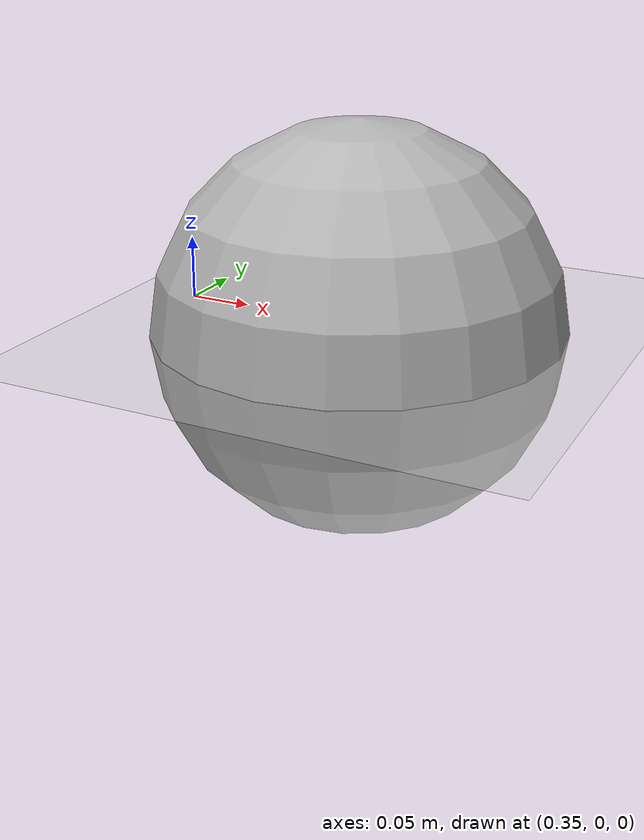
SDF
<?xml version="1.0" ?>
<sdf version="1.4">
    <world name="empty">

    		<!-- physics  -->
    		<physics type="ode">
				  <max_step_size>0.001</max_step_size>
				  <ode>
				  	<solver>
				  		<iters>50</iters>
				  	</solver>
				  </ode>
				</physics>

        <!-- basics -->
        <include>
            <uri>model://ground_plane</uri>
        </include>
        <include>
            <uri>model://sun</uri>
        </include>

        <include>
          <uri>model://ball</uri>
          <pose>0.5 0 0 0 0 0</pose>
        </include>

        <!-- plugin to connect ros and gazebo, my first test -->
        <plugin name="gz_link" filename="libgz_link.so"/>

    </world>
</sdf>

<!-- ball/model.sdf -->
<sdf version="1.4">

  <model name="ball">
    <pose>0.5 0 0.1 0 0 0</pose>
    <link name="link">
      <inertial>
        <mass>1.0</mass>
        <inertia>
          <ixx>0.1</ixx>
          <iyy>0.1</iyy>
          <izz>0.1</izz>
          <ixy>0.0</ixy>
          <ixz>0.0</ixz>
          <iyz>0.0</iyz>
        </inertia>
      </inertial>
      <collision name="collision">
        <geometry>
          <sphere>
            <radius>0.16</radius>
          </sphere>
        </geometry>
        <surface>
          <friction>
            <ode>
              <mu>100</mu>
              <mu2>50</mu2>
            </ode>
          </friction>
          <bounce/>
          <contact>
            <ode/>
          </contact>
        </surface>
      </collision>
      <visual name="visual">
        <geometry>
          <sphere>
            <radius>0.16</radius>
          </sphere>
        </geometry>
      </visual>
    </link>
  </model>

</sdf>
